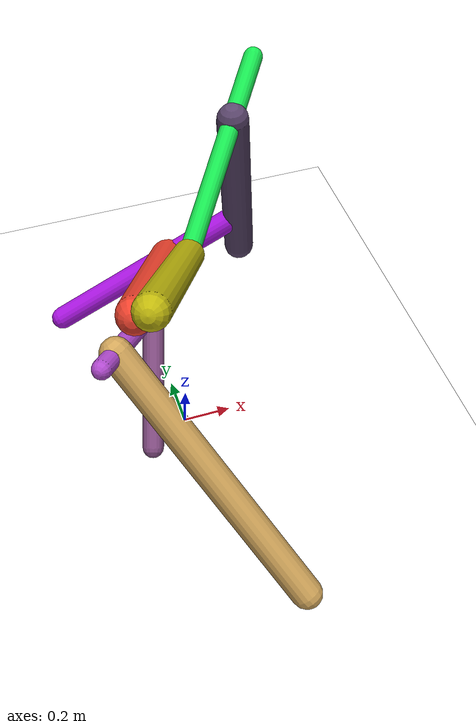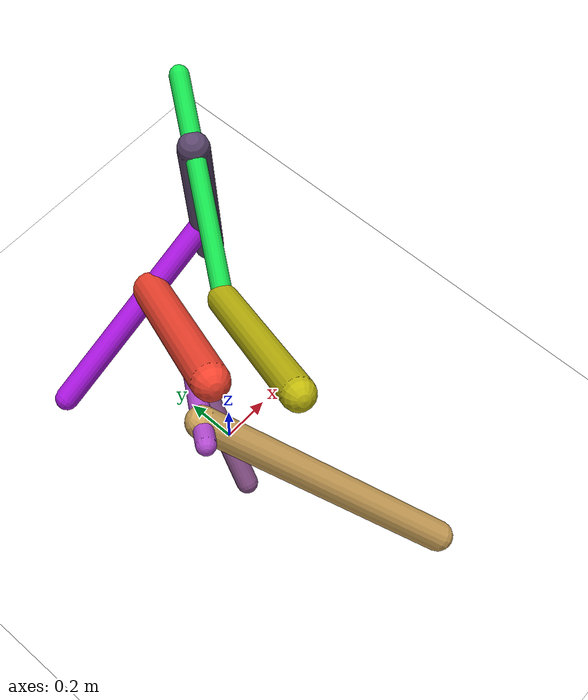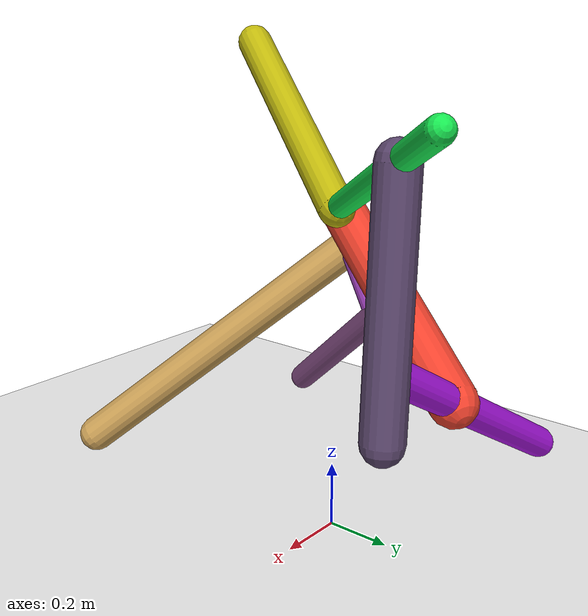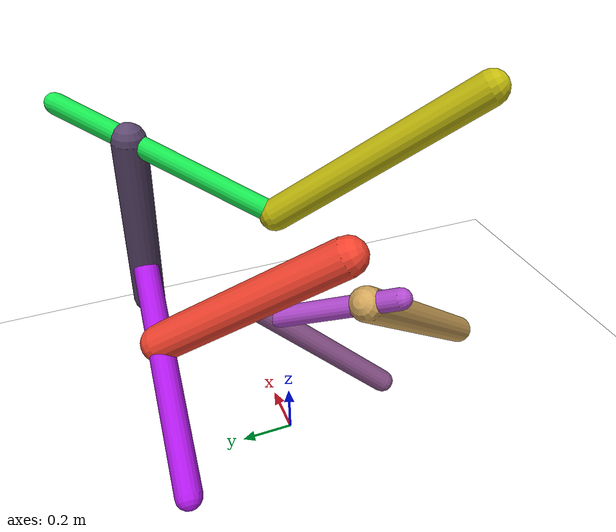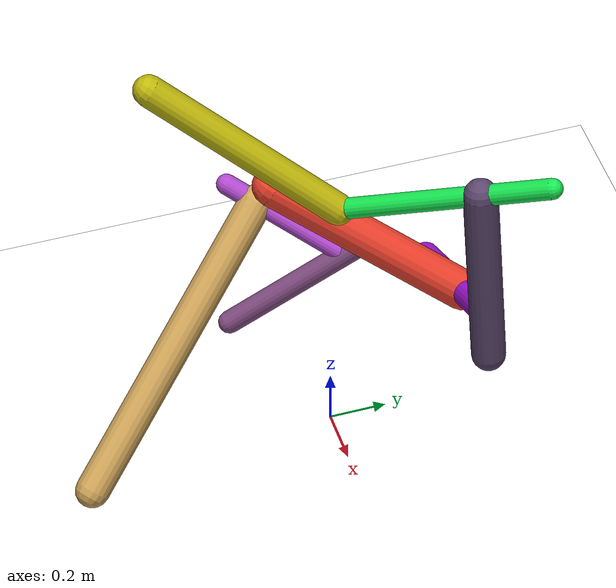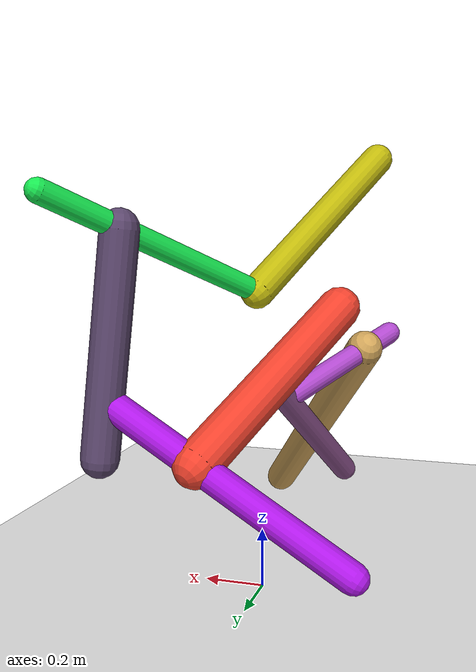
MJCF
<mujoco model="morphology">
  <option timestep="0.01"/>
  <default>
    <default class="/"/>
    <default class="0/"/>
    <default class="0/1/"/>
    <default class="0/1/2/"/>
    <default class="0/1/2/3/"/>
    <default class="0/1/2/3/4/"/>
    <default class="0/1/2/3/4/5/"/>
    <default class="0/1/2/3/4/5/6/"/>
    <default class="0/7/"/>
  </default>
  <asset>
    <texture name="texplane" type="2d" builtin="checker" rgb1="0.10000000000000001 0.20000000000000001 0.29999999999999999" rgb2="0.20000000000000001 0.29999999999999999 0.40000000000000002" width="300" height="300"/>
    <material name="MatPlane" class="/" texture="texplane" texrepeat="20 20" specular="1" shininess="1" reflectance="0.5"/>
  </asset>
  <worldbody>
    <light name="//unnamed_light_0" class="/" directional="true" pos="0 0 1.5" dir="0 0 -1.3" cutoff="100" exponent="1" diffuse="1 1 1" specular="0.10000000000000001 0.10000000000000001 0.10000000000000001"/>
    <geom name="ground" class="/" type="plane" size="15 15 0.5" material="MatPlane" rgba="1 1 1 1"/>
    <site name="body" class="/" size="9.9999999999999995e-07 9.9999999999999995e-07 9.9999999999999995e-07" pos="0 0 0.98882786035537718"/>
    <body pos="0 0 0.98882786035537718" name="0/">
      <freejoint name="0/"/>
      <geom name="0/geom" class="0/" type="capsule" contype="1" conaffinity="1" condim="3" size="0.035545877138288537" rgba="0.086263893095356203 0.89873950953837878 0.31156291856156892 1" friction="0.59999999999999998 0.10000000000000001 0.10000000000000001" fromto="0 0 0 0.43725778188446496 0.60351475140650357 0.31614302740140543"/>
      <site name="0/end0" class="0/" size="0.0050000000000000001" pos="0.43725778188446496 0.60351475140650357 0.31614302740140543"/>
      <site name="0/attach1" class="0/" size="9.9999999999999995e-07 9.9999999999999995e-07 9.9999999999999995e-07" pos="0.29729385952124798 0.41033284519348773 0.21494730264567236"/>
      <body pos="0.29729385952124798 0.41033284519348773 0.21494730264567236" name="0/1/">
        <joint name="0/1/joint/" class="0/" type="hinge" axis="0 0 1" limited="true" range="-62.305593354417589 62.305593354417589"/>
        <geom name="0/1/geom" class="0/1/" type="capsule" contype="1" conaffinity="1" condim="3" size="0.058379993479713795" rgba="0.35484744629459919 0.27340278950908892 0.42438345154563983 1" friction="0.59999999999999998 0.10000000000000001 0.10000000000000001" fromto="0 0 0 0.071383537588482593 0.024133394844941813 -0.66865373432883746"/>
        <site name="0/1/end1" class="0/1/" size="0.0050000000000000001" pos="0.071383537588482593 0.024133394844941813 -0.66865373432883746"/>
        <site name="0/1/attach2" class="0/1/" size="9.9999999999999995e-07 9.9999999999999995e-07 9.9999999999999995e-07" pos="0.052576419740246357 0.017775071676042586 -0.4924863712922557"/>
        <body pos="0.052576419740246357 0.017775071676042586 -0.4924863712922557" name="0/1/2/">
          <joint name="0/1/2/joint/" class="0/1/" type="hinge" axis="-0.99435700091254797 0.0038264046708985089 -0.10601657117402752" limited="true" range="-64.801248333295234 64.801248333295234"/>
          <geom name="0/1/2/geom" class="0/1/2/" type="capsule" contype="1" conaffinity="1" condim="3" size="0.046137481972136608" rgba="0.67856063518312937 0.087054654629996286 0.89710132111448437 1" friction="0.59999999999999998 0.10000000000000001 0.10000000000000001" fromto="0 0 0 -0.74628008393074952 0.050352373617847501 -0.43551634521776411"/>
          <site name="0/1/2/end2" class="0/1/2/" size="0.0050000000000000001" pos="-0.74628008393074952 0.050352373617847501 -0.43551634521776411"/>
          <site name="0/1/2/attach3" class="0/1/2/" size="9.9999999999999995e-07 9.9999999999999995e-07 9.9999999999999995e-07" pos="-0.28645317802488546 0.019327324625840133 -0.16716919539418956"/>
          <body pos="-0.28645317802488546 0.019327324625840133 -0.16716919539418956" name="0/1/2/3/">
            <geom name="0/1/2/3/geom" class="0/1/2/3/" type="capsule" contype="1" conaffinity="1" condim="3" size="0.069382224489480282" rgba="0.93919246124619826 0.25754727913062259 0.17651875191405941 1" friction="0.59999999999999998 0.10000000000000001 0.10000000000000001" fromto="0 0 0 -0.28510350324715811 -0.58584807180730847 0.39268527669779529"/>
            <site name="0/1/2/3/end3" class="0/1/2/3/" size="0.0050000000000000001" pos="-0.28510350324715811 -0.58584807180730847 0.39268527669779529"/>
            <site name="0/1/2/3/attach4" class="0/1/2/3/" size="9.9999999999999995e-07 9.9999999999999995e-07 9.9999999999999995e-07" pos="-0.14033060723530014 -0.28835989290906339 0.19328336096800577"/>
            <body pos="-0.14033060723530014 -0.28835989290906339 0.19328336096800577" name="0/1/2/3/4/">
              <joint name="0/1/2/3/4/joint/" class="0/1/2/3/" type="hinge" axis="-5.5511151231257827e-17 0.55677936585761234 0.83066042264886741" limited="true" range="-62.36583846269734 62.36583846269734"/>
              <geom name="0/1/2/3/4/geom" class="0/1/2/3/4/" type="capsule" contype="1" conaffinity="1" condim="3" size="0.039415904734510052" rgba="0.5230225950336107 0.30763810565858152 0.52389026429892771 1" friction="0.59999999999999998 0.10000000000000001 0.10000000000000001" fromto="0 0 0 -0.14133086502549275 -0.45337585419305049 -0.3920805217507734"/>
              <site name="0/1/2/3/4/end4" class="0/1/2/3/4/" size="0.0050000000000000001" pos="-0.14133086502549275 -0.45337585419305049 -0.3920805217507734"/>
              <site name="0/1/2/3/4/attach5" class="0/1/2/3/4/" size="9.9999999999999995e-07 9.9999999999999995e-07 9.9999999999999995e-07" pos="-0.024365568351862411 -0.078162405377142516 -0.067595034888020836"/>
              <body pos="-0.024365568351862411 -0.078162405377142516 -0.067595034888020836" name="0/1/2/3/4/5/">
                <joint name="0/1/2/3/4/5/joint/" class="0/1/2/3/4/" type="hinge" axis="0.97330980289349367 -0.1735870515964783 -0.15011849689318746" limited="true" range="-44.039331331717193 44.039331331717193"/>
                <geom name="0/1/2/3/4/5/geom" class="0/1/2/3/4/5/" type="capsule" contype="1" conaffinity="1" condim="3" size="0.036076005034995653" rgba="0.68584885764159254 0.28517031143703508 0.80082540058953566 1" friction="0.59999999999999998 0.10000000000000001 0.10000000000000001" fromto="0 0 0 -0.26988525961183618 -0.33477739702254489 0.17480849514663221"/>
                <site name="0/1/2/3/4/5/end5" class="0/1/2/3/4/5/" size="0.0050000000000000001" pos="-0.26988525961183618 -0.33477739702254489 0.17480849514663221"/>
                <site name="0/1/2/3/4/5/attach6" class="0/1/2/3/4/5/" size="9.9999999999999995e-07 9.9999999999999995e-07 9.9999999999999995e-07" pos="-0.20248303973699577 -0.25116875624055418 0.13115112518574779"/>
                <body pos="-0.20248303973699577 -0.25116875624055418 0.13115112518574779" name="0/1/2/3/4/5/6/">
                  <joint name="0/1/2/3/4/5/6/joint/" class="0/1/2/3/4/5/" type="hinge" axis="0.81360950237966378 -0.51538111561836497 0.26911314219392091" limited="true" range="-51.972580522178347 51.972580522178347"/>
                  <geom name="0/1/2/3/4/5/6/geom" class="0/1/2/3/4/5/6/" type="capsule" contype="1" conaffinity="1" condim="3" size="0.059427992959166037" rgba="0.81099567128042349 0.64121314084376324 0.34800204220757636 1" friction="0.59999999999999998 0.10000000000000001 0.10000000000000001" fromto="0 0 0 0.48238856647431483 -0.73225965712767416 -0.70095904736444237"/>
                  <site name="0/1/2/3/4/5/6/end6" class="0/1/2/3/4/5/6/" size="0.0050000000000000001" pos="0.48238856647431483 -0.73225965712767416 -0.70095904736444237"/>
                </body>
              </body>
            </body>
          </body>
        </body>
      </body>
      <site name="0/attach7" class="0/" size="9.9999999999999995e-07 9.9999999999999995e-07 9.9999999999999995e-07" pos="0.012186156606323733 0.016819655543167548 0.0088107487196849282"/>
      <body pos="0.012186156606323733 0.016819655543167548 0.0088107487196849282" name="0/7/">
        <joint name="0/7/joint/" class="0/" type="hinge" axis="0 1 0" limited="true" range="-30.407725398577959 30.407725398577959"/>
        <geom name="0/7/geom" class="0/7/" type="capsule" contype="1" conaffinity="1" condim="3" size="0.054096960127279284" rgba="0.74706760427076058 0.71414225948617516 0.046184312597225663 1" friction="0.59999999999999998 0.10000000000000001 0.10000000000000001" fromto="0 0 0 -0.28366621318657337 -0.55975389696582334 0.43471728705261636"/>
        <site name="0/7/end7" class="0/7/" size="0.0050000000000000001" pos="-0.28366621318657337 -0.55975389696582334 0.43471728705261636"/>
      </body>
      <camera name="0/iso" class="0/" mode="trackcom" pos="-2.2999999999999998 -2.2999999999999998 1" xyaxes="0.45000000000000001 -0.45000000000000001 0 0.29999999999999999 0.14999999999999999 0.93999999999999995"/>
    </body>
  </worldbody>
  <actuator>
    <motor name="0/1/motor" class="0/1/" ctrllimited="true" ctrlrange="-1 1" gear="64" joint="0/1/joint/"/>
    <motor name="0/1/2/motor" class="0/1/2/" ctrllimited="true" ctrlrange="-1 1" gear="58" joint="0/1/2/joint/"/>
    <motor name="0/1/2/3/4/motor" class="0/1/2/3/4/" ctrllimited="true" ctrlrange="-1 1" gear="74" joint="0/1/2/3/4/joint/"/>
    <motor name="0/1/2/3/4/5/motor" class="0/1/2/3/4/5/" ctrllimited="true" ctrlrange="-1 1" gear="72" joint="0/1/2/3/4/5/joint/"/>
    <motor name="0/1/2/3/4/5/6/motor" class="0/1/2/3/4/5/6/" ctrllimited="true" ctrlrange="-1 1" gear="90" joint="0/1/2/3/4/5/6/joint/"/>
    <motor name="0/7/motor" class="0/7/" ctrllimited="true" ctrlrange="-1 1" gear="51" joint="0/7/joint/"/>
  </actuator>
  <sensor>
    <subtreelinvel name="velocity" body="0/"/>
  </sensor>
</mujoco>
